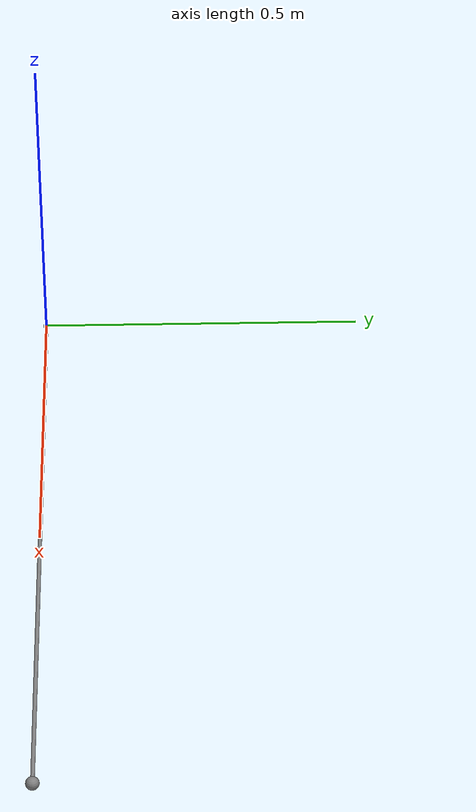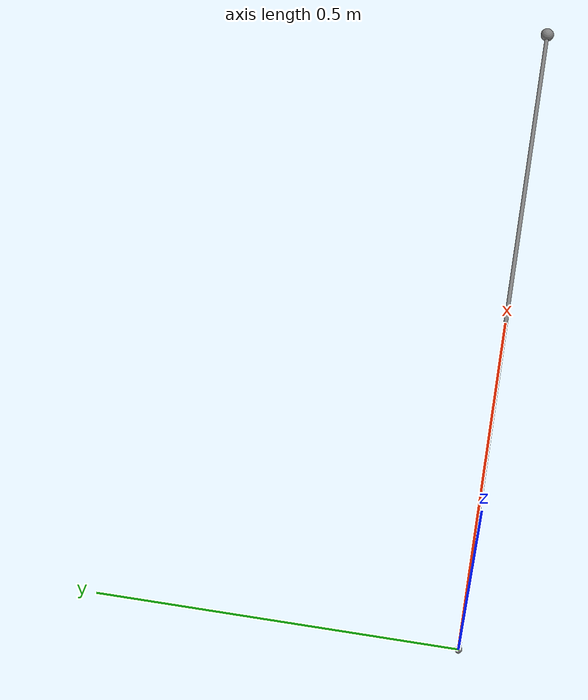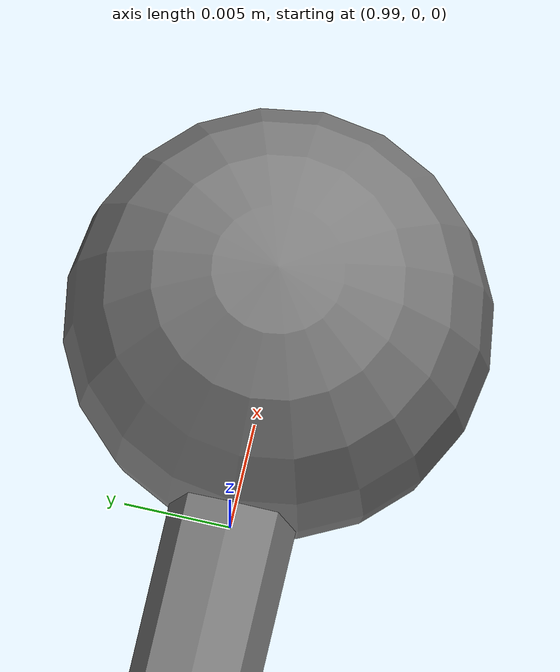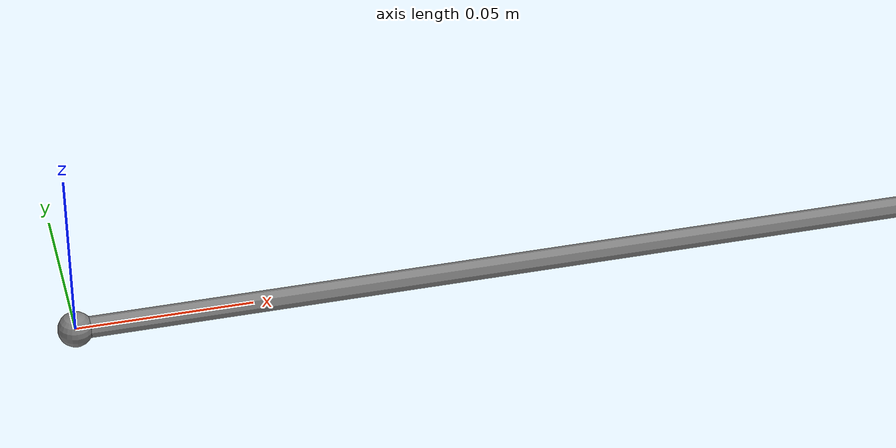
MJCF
<mujoco>
  <worldbody>
    <site name="1"/>
    <body pos="1 0 0">
      <site name="2"/>
      <freejoint/>
      <geom size=".01"/>
    </body>
  </worldbody>

  <tendon>
    <spatial limited="true" range="0.99 1.01" margin="0.1">
      <site site="1"/>
      <site site="2"/>
    </spatial>
  </tendon>
</mujoco>
